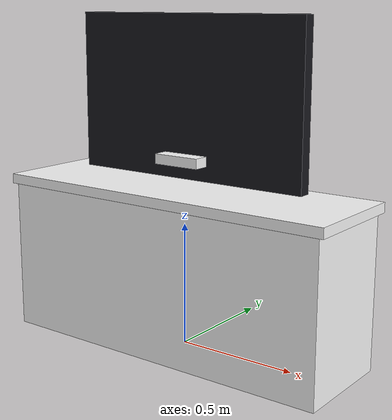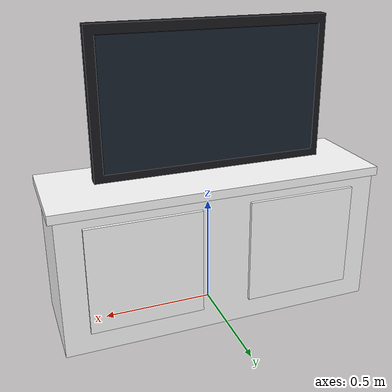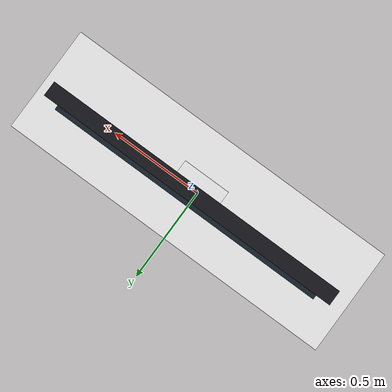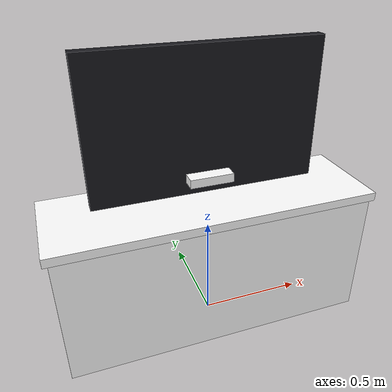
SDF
<?xml version="1.0"?>
<sdf version="1.9">
  <model name="tv_stand">
    <static>true</static>
    <link name="body">

      <collision name="cabinet_collision">
        <pose>0 0 0.31 0 0 0</pose>
        <geometry><box><size>1.44 0.44 0.64</size></box></geometry>
      </collision>
      <collision name="top_slab_collision">
        <pose>0 0 0.63 0 0 0</pose>
        <geometry><box><size>1.48 0.46 0.04</size></box></geometry>
      </collision>
      <collision name="center_shelf_collision">
        <pose>0 0 0.28 0 0 0</pose>
        <geometry><box><size>0.34 0.36 0.03</size></box></geometry>
      </collision>
      <collision name="left_door_collision">
        <pose>-0.36 0.22 0.33 0 0 0</pose>
        <geometry><box><size>0.50 0.03 0.48</size></box></geometry>
      </collision>
      <collision name="right_door_collision">
        <pose>0.36 0.22 0.33 0 0 0</pose>
        <geometry><box><size>0.50 0.03 0.48</size></box></geometry>
      </collision>
      <collision name="tv_collision">
        <pose>0 0.03 1.00 0 0 0</pose>
        <geometry><box><size>1.04 0.05 0.64</size></box></geometry>
      </collision>
      <collision name="tv_base_collision">
        <pose>0 0 0.76 0 0 0</pose>
        <geometry><box><size>0.20 0.12 0.04</size></box></geometry>
      </collision>
      <visual name="cabinet_visual">
        <pose>0 0 0.31 0 0 0</pose>
        <geometry><box><size>1.44 0.44 0.64</size></box></geometry>
        <material>
          <ambient>1 1 1 1</ambient>
          <diffuse>1 1 1 1</diffuse>
          <specular>0.05 0.05 0.05 1</specular>
          <pbr>
            <metal>
              <albedo_map>materials/textures/wood_albedo.jpg</albedo_map>
              <normal_map>materials/textures/wood_normal.jpg</normal_map>
              <roughness_map>materials/textures/wood_roughness.jpg</roughness_map>
              <metalness>0.0</metalness>
            </metal>
          </pbr>
        </material>
      </visual>

      <visual name="top_slab">
        <pose>0 0 0.63 0 0 0</pose>
        <geometry><box><size>1.48 0.46 0.04</size></box></geometry>
        <material><ambient>1 1 1 1</ambient><diffuse>1 1 1 1</diffuse><specular>0.05 0.05 0.05 1</specular><pbr><metal><albedo_map>materials/textures/wood_albedo.jpg</albedo_map><normal_map>materials/textures/wood_normal.jpg</normal_map><roughness_map>materials/textures/wood_roughness.jpg</roughness_map><metalness>0.0</metalness></metal></pbr></material>
      </visual>

      <visual name="left_door">
        <pose>-0.36 0.22 0.33 0 0 0</pose>
        <geometry><box><size>0.50 0.03 0.48</size></box></geometry>
        <material><ambient>1 1 1 1</ambient><diffuse>1 1 1 1</diffuse><specular>0.05 0.05 0.05 1</specular><pbr><metal><albedo_map>materials/textures/wood_albedo.jpg</albedo_map><normal_map>materials/textures/wood_normal.jpg</normal_map><roughness_map>materials/textures/wood_roughness.jpg</roughness_map><metalness>0.0</metalness></metal></pbr></material>
      </visual>
      <visual name="right_door">
        <pose>0.36 0.22 0.33 0 0 0</pose>
        <geometry><box><size>0.50 0.03 0.48</size></box></geometry>
        <material><ambient>1 1 1 1</ambient><diffuse>1 1 1 1</diffuse><specular>0.05 0.05 0.05 1</specular><pbr><metal><albedo_map>materials/textures/wood_albedo.jpg</albedo_map><normal_map>materials/textures/wood_normal.jpg</normal_map><roughness_map>materials/textures/wood_roughness.jpg</roughness_map><metalness>0.0</metalness></metal></pbr></material>
      </visual>
      <visual name="center_shelf">
        <pose>0 0 0.28 0 0 0</pose>
        <geometry><box><size>0.34 0.36 0.03</size></box></geometry>
        <material><ambient>1 1 1 1</ambient><diffuse>1 1 1 1</diffuse><specular>0.05 0.05 0.05 1</specular><pbr><metal><albedo_map>materials/textures/wood_albedo.jpg</albedo_map><normal_map>materials/textures/wood_normal.jpg</normal_map><roughness_map>materials/textures/wood_roughness.jpg</roughness_map><metalness>0.0</metalness></metal></pbr></material>
      </visual>

      <visual name="tv_frame">
        <pose>0 0.03 1.00 0 0 0</pose>
        <geometry><box><size>1.04 0.05 0.64</size></box></geometry>
        <material><ambient>0.05 0.05 0.06 1</ambient><diffuse>0.10 0.10 0.12 1</diffuse></material>
      </visual>
      <visual name="tv_screen">
        <pose>0 0.06 1.00 0 0 0</pose>
        <geometry><box><size>0.96 0.02 0.56</size></box></geometry>
        <material><ambient>0.05 0.07 0.09 1</ambient><diffuse>0.10 0.14 0.18 1</diffuse></material>
      </visual>
      <visual name="tv_base">
        <pose>0 0 0.76 0 0 0</pose>
        <geometry><box><size>0.20 0.12 0.04</size></box></geometry>
        <material><ambient>1 1 1 1</ambient><diffuse>1 1 1 1</diffuse><specular>0.12 0.12 0.12 1</specular><pbr><metal><albedo_map>materials/textures/metal_albedo.jpg</albedo_map><normal_map>materials/textures/metal_normal.jpg</normal_map><roughness_map>materials/textures/metal_roughness.jpg</roughness_map><metalness_map>materials/textures/metal_metalness.jpg</metalness_map></metal></pbr></material>
      </visual>

    </link>
  </model>
</sdf>
